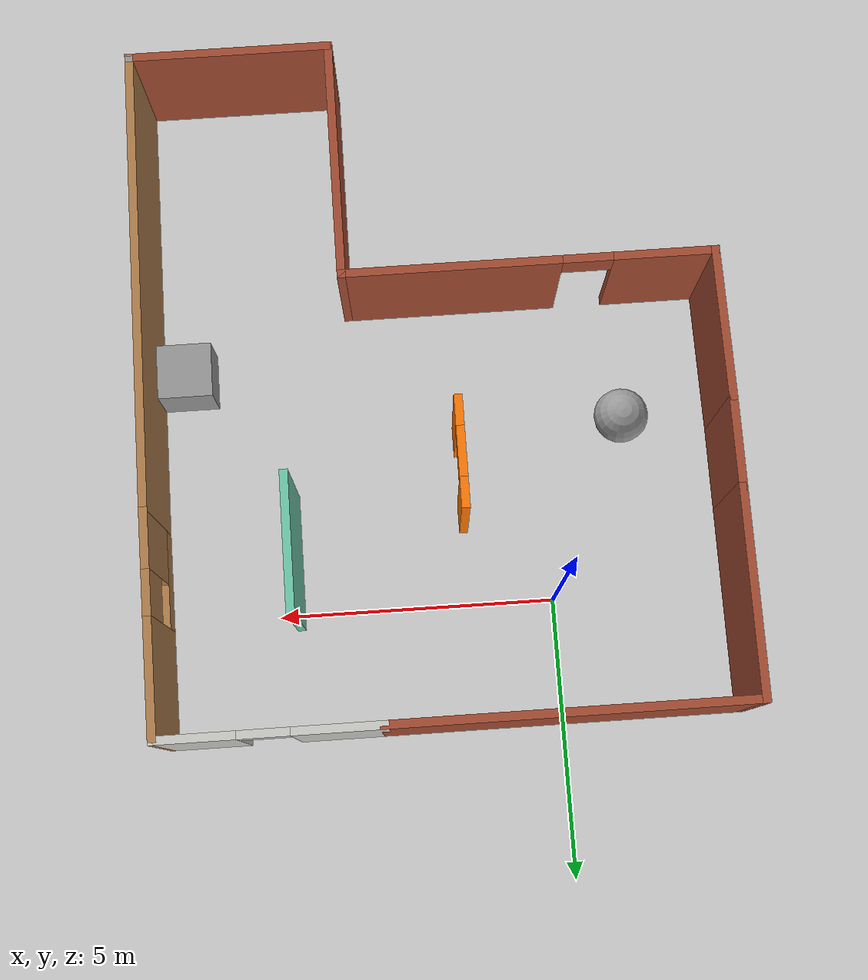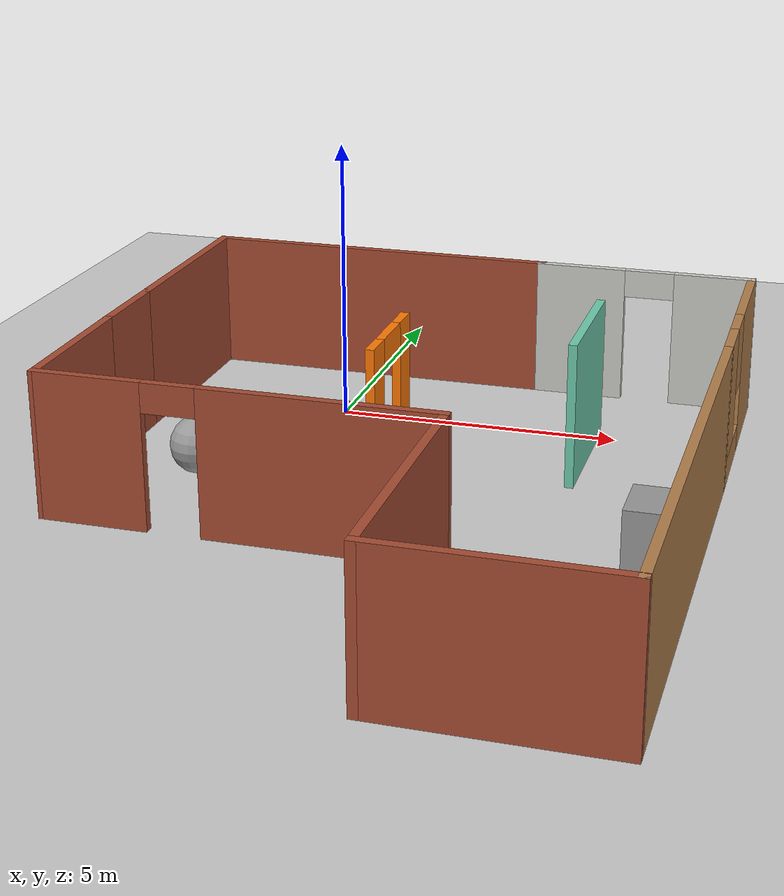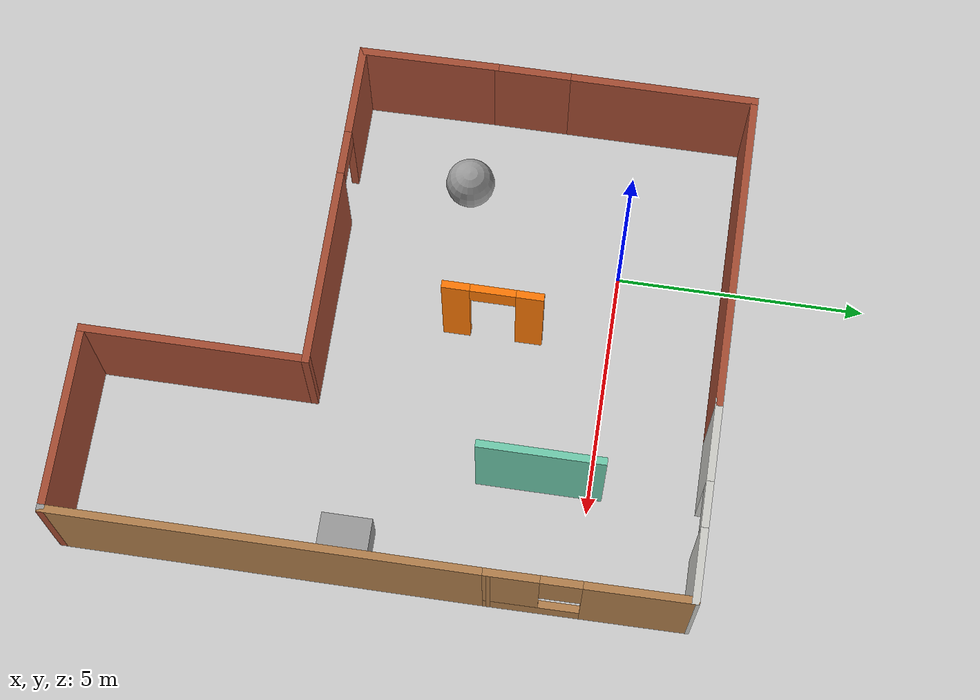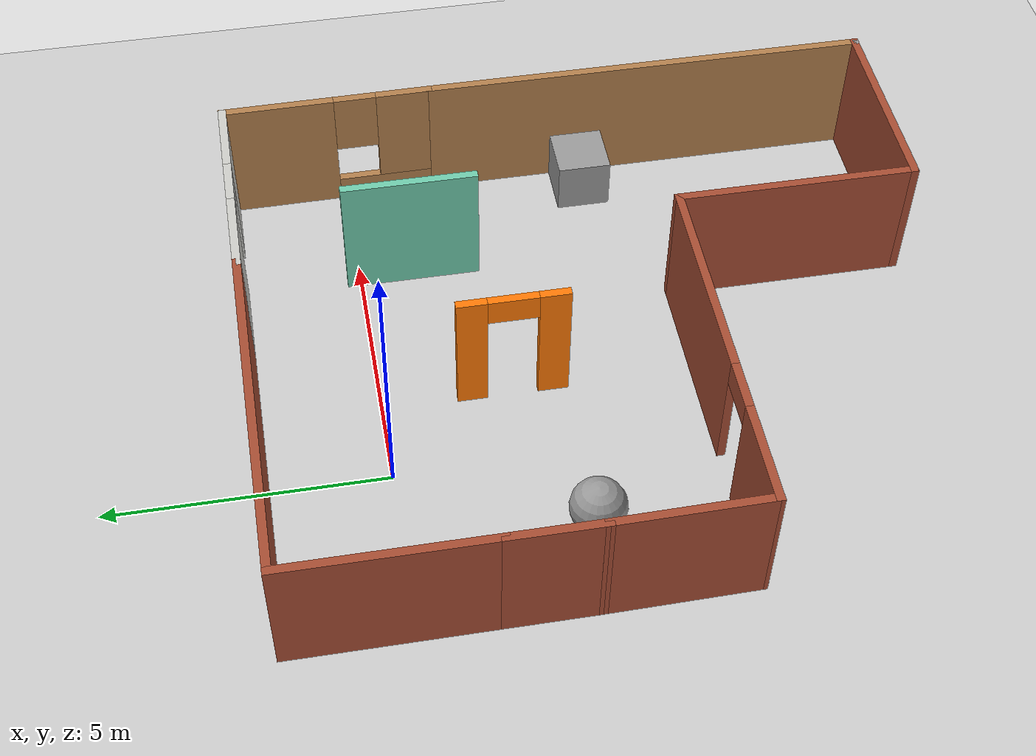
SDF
<sdf version="1.7">
 <world name="default">
  <light name="sun" type="directional">
   <pose>0 0 10 0 -0 0</pose>
   <diffuse>0.8 0.8 0.8 1</diffuse>
   <specular>0.2 0.2 0.2 1</specular>
   <attenuation>
    <range>1000</range>
    <constant>0.9</constant>
    <linear>0.01</linear>
    <quadratic>0.001</quadratic>
   </attenuation>
   <direction>-0.5 0.1 -0.9</direction>
   <spot><inner_angle>0</inner_angle><outer_angle>0</outer_angle><falloff>0</falloff></spot>
  </light>
  <model name="ground_plane">
   <static>1</static>
   <link name="link">
    <collision name="collision">
     <geometry><plane><normal>0 0 1</normal><size>100 100</size></plane></geometry>
     <surface><friction><ode><mu>100</mu><mu2>50</mu2></ode></friction></surface>
    </collision>
    <visual name="visual">
     <cast_shadows>0</cast_shadows>
     <geometry><plane><normal>0 0 1</normal><size>100 100</size></plane></geometry>
     <material>
      <script><uri>file://media/materials/scripts/gazebo.material</uri><name>Gazebo/Grey</name></script>
     </material>
    </visual>
   </link>
  </model>
  <gravity>0 0 -9.8</gravity>
  <magnetic_field>6e-06 2.3e-05 -4.2e-05</magnetic_field>
  <atmosphere type="adiabatic"/>
  <physics type="ode">
   <max_step_size>0.001</max_step_size>
   <real_time_factor>1</real_time_factor>
   <real_time_update_rate>1000</real_time_update_rate>
  </physics>
  <scene><ambient>0.4 0.4 0.4 1</ambient><background>0.7 0.7 0.7 1</background><shadows>1</shadows></scene>
  <spherical_coordinates>
   <surface_model>EARTH_WGS84</surface_model>
   <latitude_deg>0</latitude_deg>
   <longitude_deg>0</longitude_deg>
   <elevation>0</elevation>
   <heading_deg>0</heading_deg>
  </spherical_coordinates>
  <model name="office">
   <pose>1.92508 -3.9187 0 0 -0 0</pose>
   <link name="Wall_0">
    <collision name="Wall_0_Collision">
     <geometry><box><size>1.75 0.15 2.5</size></box></geometry>
     <pose>0 0 1.25 0 -0 0</pose>
    </collision>
    <visual name="Wall_0_Visual">
     <pose>0 0 1.25 0 -0 0</pose>
     <geometry><box><size>1.75 0.15 2.5</size></box></geometry>
     <material>
      <script><uri>file://media/materials/scripts/gazebo.material</uri><name>Gazebo/Bricks</name></script>
      <ambient>1 1 1 1</ambient>
     </material>
     <meta><layer>0</layer></meta>
    </visual>
    <pose>-5.11508 1.7087 0 0 -0 1.5708</pose>
   </link>
   <link name="Wall_1">
    <collision name="Wall_1_Collision">
     <geometry><box><size>3.75 0.15 2.5</size></box></geometry>
     <pose>0 0 1.25 0 -0 0</pose>
    </collision>
    <visual name="Wall_1_Visual">
     <pose>0 0 1.25 0 -0 0</pose>
     <geometry><box><size>3.75 0.15 2.5</size></box></geometry>
     <material>
      <script><uri>file://media/materials/scripts/gazebo.material</uri><name>Gazebo/Bricks</name></script>
      <ambient>1 1 1 1</ambient>
     </material>
     <meta><layer>0</layer></meta>
    </visual>
    <pose>-5.11508 4.3087 0 0 -0 1.5708</pose>
   </link>
   <link name="Wall_11">
    <collision name="Wall_11_Collision">
     <geometry><box><size>8.5 0.15 2.5</size></box></geometry>
     <pose>0 0 1.25 0 -0 0</pose>
    </collision>
    <visual name="Wall_11_Visual">
     <pose>0 0 1.25 0 -0 0</pose>
     <geometry><box><size>8.5 0.15 2.5</size></box></geometry>
     <material>
      <script><uri>file://media/materials/scripts/gazebo.material</uri><name>Gazebo/Wood</name></script>
      <ambient>1 1 1 1</ambient>
     </material>
     <meta><layer>0</layer></meta>
    </visual>
    <pose>5.11534 -1.93429 0 0 -0 -1.5708</pose>
   </link>
   <link name="Wall_12">
    <collision name="Wall_12_Collision">
     <geometry><box><size>0.15 0.15 2.5</size></box></geometry>
     <pose>0 0 1.25 0 -0 0</pose>
    </collision>
    <visual name="Wall_12_Visual">
     <pose>0 0 1.25 0 -0 0</pose>
     <geometry><box><size>0.15 0.15 2.5</size></box></geometry>
     <material>
      <script><uri>file://media/materials/scripts/gazebo.material</uri><name>Gazebo/Grey</name></script>
      <ambient>1 1 1 1</ambient>
     </material>
     <meta><layer>0</layer></meta>
    </visual>
    <pose>5.11534 -6.10929 0 0 -0 0</pose>
   </link>
   <link name="Wall_14">
    <collision name="Wall_14_Collision">
     <geometry><box><size>3.75 0.15 2.5</size></box></geometry>
     <pose>0 0 1.25 0 -0 0</pose>
    </collision>
    <visual name="Wall_14_Visual">
     <pose>0 0 1.25 0 -0 0</pose>
     <geometry><box><size>3.75 0.15 2.5</size></box></geometry>
     <material>
      <script><uri>file://media/materials/scripts/gazebo.material</uri><name>Gazebo/Bricks</name></script>
      <ambient>1 1 1 1</ambient>
     </material>
     <meta><layer>0</layer></meta>
    </visual>
    <pose>3.31534 -6.10929 0 0 -0 3.14159</pose>
   </link>
   <link name="Wall_15">
    <collision name="Wall_15_Collision">
     <geometry><box><size>4.5 0.15 2.5</size></box></geometry>
     <pose>0 0 1.25 0 -0 0</pose>
    </collision>
    <visual name="Wall_15_Visual">
     <pose>0 0 1.25 0 -0 0</pose>
     <geometry><box><size>4.5 0.15 2.5</size></box></geometry>
     <material>
      <script><uri>file://media/materials/scripts/gazebo.material</uri><name>Gazebo/Bricks</name></script>
      <ambient>1 1 1 1</ambient>
     </material>
     <meta><layer>0</layer></meta>
    </visual>
    <pose>1.51534 -3.93429 0 0 -0 1.5708</pose>
   </link>
   <link name="Wall_16">
    <pose>-1.78466 -1.75929 0 0 -0 3.14159</pose>
    <visual name="Wall_16_Visual_0">
     <pose>-1.38607 0 1.25 0 -0 0</pose>
     <geometry><box><size>3.97787 0.15 2.5</size></box></geometry>
     <material>
      <script><uri>file://media/materials/scripts/gazebo.material</uri><name>Gazebo/Bricks</name></script>
      <ambient>1 1 1 1</ambient>
     </material>
     <meta><layer>0</layer></meta>
    </visual>
    <collision name="Wall_16_Collision_0">
     <geometry><box><size>3.97787 0.15 2.5</size></box></geometry>
     <pose>-1.38607 0 1.25 0 -0 0</pose>
    </collision>
    <visual name="Wall_16_Visual_1">
     <pose>2.43893 0 1.25 0 -0 0</pose>
     <geometry><box><size>1.87213 0.15 2.5</size></box></geometry>
     <material>
      <script><uri>file://media/materials/scripts/gazebo.material</uri><name>Gazebo/Bricks</name></script>
      <ambient>1 1 1 1</ambient>
     </material>
     <meta><layer>0</layer></meta>
    </visual>
    <collision name="Wall_16_Collision_1">
     <geometry><box><size>1.87213 0.15 2.5</size></box></geometry>
     <pose>2.43893 0 1.25 0 -0 0</pose>
    </collision>
    <visual name="Wall_16_Visual_2">
     <pose>1.05287 0 2.25 0 -0 0</pose>
     <geometry><box><size>0.9 0.15 0.5</size></box></geometry>
     <material>
      <script><uri>file://media/materials/scripts/gazebo.material</uri><name>Gazebo/Bricks</name></script>
      <ambient>1 1 1 1</ambient>
     </material>
     <meta><layer>0</layer></meta>
    </visual>
    <collision name="Wall_16_Collision_2">
     <geometry><box><size>0.9 0.15 0.5</size></box></geometry>
     <pose>1.05287 0 2.25 0 -0 0</pose>
    </collision>
   </link>
   <link name="Wall_17">
    <collision name="Wall_17_Collision">
     <geometry><box><size>2.81817 0.15 2.5</size></box></geometry>
     <pose>0 0 1.25 0 -0 0</pose>
    </collision>
    <visual name="Wall_17_Visual">
     <pose>0 0 1.25 0 -0 0</pose>
     <geometry><box><size>2.81817 0.15 2.5</size></box></geometry>
     <material>
      <script><uri>file://media/materials/scripts/gazebo.material</uri><name>Gazebo/Bricks</name></script>
      <ambient>1 1 1 1</ambient>
     </material>
     <meta><layer>0</layer></meta>
    </visual>
    <pose>-5.09987 -0.425293 0 0 -0 1.5822</pose>
   </link>
   <link name="Wall_19">
    <pose>-0.373713 1.55675 0 0 -0 1.5708</pose>
    <visual name="Wall_19_Visual_0">
     <pose>-0.723633 0 1.25 0 -0 0</pose>
     <geometry><box><size>0.552734 0.15 2.5</size></box></geometry>
     <material>
      <script><uri>file://media/materials/scripts/gazebo.material</uri><name>Gazebo/Grey</name></script>
      <ambient>0.996078 0.47451 0.0196078 1</ambient>
     </material>
     <meta><layer>0</layer></meta>
    </visual>
    <collision name="Wall_19_Collision_0">
     <geometry><box><size>0.552734 0.15 2.5</size></box></geometry>
     <pose>-0.723633 0 1.25 0 -0 0</pose>
    </collision>
    <visual name="Wall_19_Visual_1">
     <pose>0.726367 0 1.25 0 -0 0</pose>
     <geometry><box><size>0.547266 0.15 2.5</size></box></geometry>
     <material>
      <script><uri>file://media/materials/scripts/gazebo.material</uri><name>Gazebo/Grey</name></script>
      <ambient>0.996078 0.47451 0.0196078 1</ambient>
     </material>
     <meta><layer>0</layer></meta>
    </visual>
    <collision name="Wall_19_Collision_1">
     <geometry><box><size>0.547266 0.15 2.5</size></box></geometry>
     <pose>0.726367 0 1.25 0 -0 0</pose>
    </collision>
    <visual name="Wall_19_Visual_2">
     <pose>0.002734 0 2.25 0 -0 0</pose>
     <geometry><box><size>0.9 0.15 0.5</size></box></geometry>
     <material>
      <script><uri>file://media/materials/scripts/gazebo.material</uri><name>Gazebo/Grey</name></script>
      <ambient>0.996078 0.47451 0.0196078 1</ambient>
     </material>
     <meta><layer>0</layer></meta>
    </visual>
    <collision name="Wall_19_Collision_2">
     <geometry><box><size>0.9 0.15 0.5</size></box></geometry>
     <pose>0.002734 0 2.25 0 -0 0</pose>
    </collision>
   </link>
   <link name="Wall_2">
    <collision name="Wall_2_Collision">
     <geometry><box><size>6.5 0.15 2.5</size></box></geometry>
     <pose>0 0 1.25 0 -0 0</pose>
    </collision>
    <visual name="Wall_2_Visual">
     <pose>0 0 1.25 0 -0 0</pose>
     <geometry><box><size>6.5 0.15 2.5</size></box></geometry>
     <material>
      <script><uri>file://media/materials/scripts/gazebo.material</uri><name>Gazebo/Bricks</name></script>
      <ambient>1 1 1 1</ambient>
     </material>
     <meta><layer>0</layer></meta>
    </visual>
    <pose>-1.94008 6.1087 0 0 -0 0</pose>
   </link>
   <link name="Wall_21">
    <collision name="Wall_21_Collision">
     <geometry><box><size>2.5 0.15 2.5</size></box></geometry>
     <pose>0 0 1.25 0 -0 0</pose>
    </collision>
    <visual name="Wall_21_Visual">
     <pose>0 0 1.25 0 -0 0</pose>
     <geometry><box><size>2.5 0.15 2.5</size></box></geometry>
     <material>
      <script><uri>file://media/materials/scripts/gazebo.material</uri><name>Gazebo/Grey</name></script>
      <ambient>0.435294 0.796078 0.67451 1</ambient>
     </material>
     <meta><layer>0</layer></meta>
    </visual>
    <pose>2.69845 2.92434 0 0 -0 -1.5708</pose>
   </link>
   <link name="Wall_3">
    <pose>3.15992 6.1087 0 0 -0 0</pose>
    <visual name="Wall_3_Visual_0">
     <pose>-1.18198 0 1.25 0 -0 0</pose>
     <geometry><box><size>1.63605 0.15 2.5</size></box></geometry>
     <material>
      <script><uri>file://media/materials/scripts/gazebo.material</uri><name>Gazebo/CeilingTiled</name></script>
      <ambient>0.996078 0.47451 0.0196078 1</ambient>
     </material>
     <meta><layer>0</layer></meta>
    </visual>
    <collision name="Wall_3_Collision_0">
     <geometry><box><size>1.63605 0.15 2.5</size></box></geometry>
     <pose>-1.18198 0 1.25 0 -0 0</pose>
    </collision>
    <visual name="Wall_3_Visual_1">
     <pose>1.26802 0 1.25 0 -0 0</pose>
     <geometry><box><size>1.46395 0.15 2.5</size></box></geometry>
     <material>
      <script><uri>file://media/materials/scripts/gazebo.material</uri><name>Gazebo/CeilingTiled</name></script>
      <ambient>0.996078 0.47451 0.0196078 1</ambient>
     </material>
     <meta><layer>0</layer></meta>
    </visual>
    <collision name="Wall_3_Collision_1">
     <geometry><box><size>1.46395 0.15 2.5</size></box></geometry>
     <pose>1.26802 0 1.25 0 -0 0</pose>
    </collision>
    <visual name="Wall_3_Visual_2">
     <pose>0.086047 0 2.25 0 -0 0</pose>
     <geometry><box><size>0.9 0.15 0.5</size></box></geometry>
     <material>
      <script><uri>file://media/materials/scripts/gazebo.material</uri><name>Gazebo/CeilingTiled</name></script>
      <ambient>0.996078 0.47451 0.0196078 1</ambient>
     </material>
     <meta><layer>0</layer></meta>
    </visual>
    <collision name="Wall_3_Collision_2">
     <geometry><box><size>0.9 0.15 0.5</size></box></geometry>
     <pose>0.086047 0 2.25 0 -0 0</pose>
    </collision>
   </link>
   <link name="Wall_4">
    <pose>5.10013 4.17471 0 0 -0 -1.56293</pose>
    <visual name="Wall_4_Visual_0">
     <pose>-0.934305 0 1.25 0 -0 0</pose>
     <geometry><box><size>2.1495 0.15 2.5</size></box></geometry>
     <material>
      <script><uri>file://media/materials/scripts/gazebo.material</uri><name>Gazebo/Wood</name></script>
      <ambient>1 1 1 1</ambient>
     </material>
     <meta><layer>0</layer></meta>
    </visual>
    <collision name="Wall_4_Collision_0">
     <geometry><box><size>2.1495 0.15 2.5</size></box></geometry>
     <pose>-0.934305 0 1.25 0 -0 0</pose>
    </collision>
    <visual name="Wall_4_Visual_1">
     <pose>1.07475 0 0.25 0 -0 0</pose>
     <geometry><box><size>1.86861 0.15 0.5</size></box></geometry>
     <material>
      <script><uri>file://media/materials/scripts/gazebo.material</uri><name>Gazebo/Wood</name></script>
      <ambient>1 1 1 1</ambient>
     </material>
     <meta><layer>0</layer></meta>
    </visual>
    <collision name="Wall_4_Collision_1">
     <geometry><box><size>1.86861 0.15 0.5</size></box></geometry>
     <pose>1.07475 0 0.25 0 -0 0</pose>
    </collision>
    <visual name="Wall_4_Visual_2">
     <pose>1.47475 0 1.5 0 -0 0</pose>
     <geometry><box><size>1.06861 0.15 2</size></box></geometry>
     <material>
      <script><uri>file://media/materials/scripts/gazebo.material</uri><name>Gazebo/Wood</name></script>
      <ambient>1 1 1 1</ambient>
     </material>
     <meta><layer>0</layer></meta>
    </visual>
    <collision name="Wall_4_Collision_2">
     <geometry><box><size>1.06861 0.15 2</size></box></geometry>
     <pose>1.47475 0 1.5 0 -0 0</pose>
    </collision>
    <visual name="Wall_4_Visual_3">
     <pose>0.540446 0 1.9 0 -0 0</pose>
     <geometry><box><size>0.8 0.15 1.2</size></box></geometry>
     <material>
      <script><uri>file://media/materials/scripts/gazebo.material</uri><name>Gazebo/Wood</name></script>
      <ambient>1 1 1 1</ambient>
     </material>
     <meta><layer>0</layer></meta>
    </visual>
    <collision name="Wall_4_Collision_3">
     <geometry><box><size>0.8 0.15 1.2</size></box></geometry>
     <pose>0.540446 0 1.9 0 -0 0</pose>
    </collision>
   </link>
   <static>1</static>
  </model>
  <model name="unit_sphere">
   <pose>-1.49714 -3.27575 0.5 0 -0 0</pose>
   <link name="link">
    <inertial>
     <mass>1</mass>
     <inertia><ixx>0.1</ixx><ixy>0</ixy><ixz>0</ixz><iyy>0.1</iyy><iyz>0</iyz><izz>0.1</izz></inertia>
    </inertial>
    <collision name="collision"><geometry><sphere><radius>0.5</radius></sphere></geometry></collision>
    <visual name="visual">
     <geometry><sphere><radius>0.5</radius></sphere></geometry>
     <material>
      <script><name>Gazebo/Grey</name><uri>file://media/materials/scripts/gazebo.material</uri></script>
     </material>
    </visual>
   </link>
  </model>
  <model name="unit_box">
   <pose>6.46542 -4.54232 0.5 0 -0 -5e-06</pose>
   <link name="link">
    <inertial>
     <mass>1</mass>
     <inertia>
      <ixx>0.166667</ixx>
      <ixy>0</ixy>
      <ixz>0</ixz>
      <iyy>0.166667</iyy>
      <iyz>0</iyz>
      <izz>0.166667</izz>
     </inertia>
    </inertial>
    <collision name="collision"><geometry><box><size>1 1 1</size></box></geometry></collision>
    <visual name="visual">
     <geometry><box><size>1 1 1</size></box></geometry>
     <material>
      <script><name>Gazebo/Grey</name><uri>file://media/materials/scripts/gazebo.material</uri></script>
     </material>
    </visual>
   </link>
  </model>
 </world>
</sdf>
